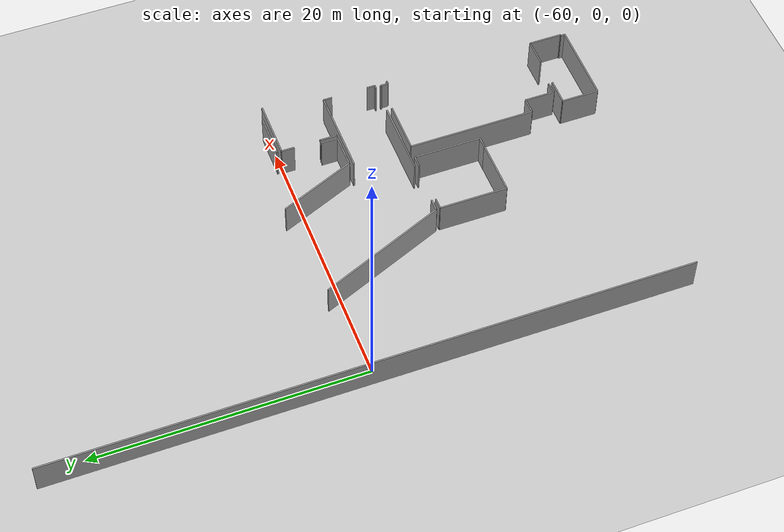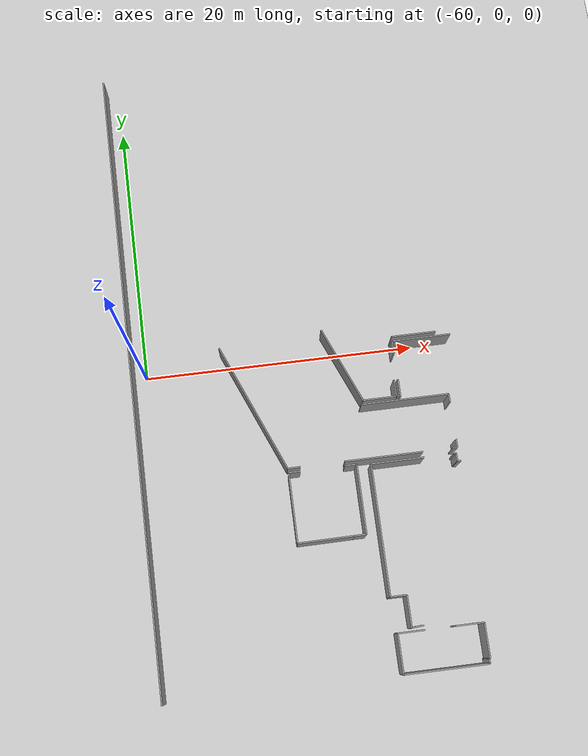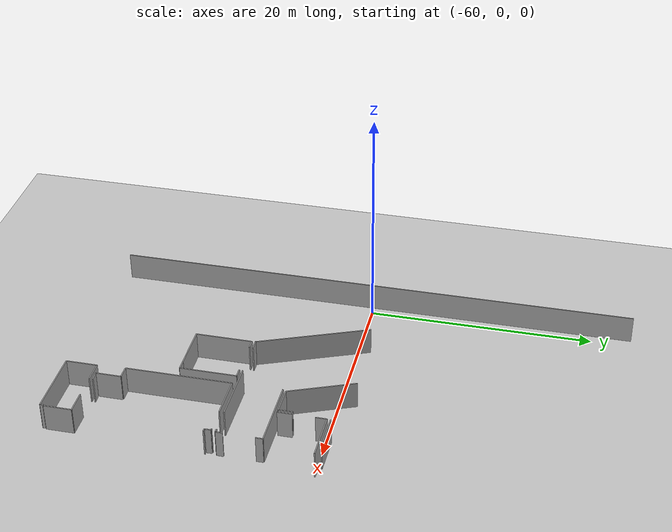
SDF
<sdf version="1.6">
 <world name="default">
  <model name="ground_plane">
   <static>1</static>
   <link name="link">
    <collision name="collision">
     <geometry><plane><normal>0 0 1</normal><size>100 100</size></plane></geometry>
     <surface><friction><ode><mu>100</mu><mu2>50</mu2></ode></friction></surface>
    </collision>
    <visual name="visual">
     <cast_shadows>0</cast_shadows>
     <geometry><plane><normal>0 0 1</normal><size>100 100</size></plane></geometry>
     <material>
      <script><uri>file://media/materials/scripts/gazebo.material</uri><name>Gazebo/Grey</name></script>
     </material>
    </visual>
   </link>
  </model>
  <model name="0510032194_A_40_1_202">
   <static>1</static>
   <link name="Wall_15">
    <collision name="Wall_15_Collision">
     <geometry><box><size>10.2029893452 0.1 2.5</size></box></geometry>
     <pose>5.10149467261 0 1.25 0 0 0</pose>
    </collision>
    <visual name="Wall_15_Visual">
     <pose>5.10149467261 0 1.25 0 0 0</pose>
     <geometry><box><size>10.2029893452 0.1 2.5</size></box></geometry>
     <material>
      <script><uri>file://media/materials/scripts/gazebo.material</uri><name>Gazebo/Grey</name></script>
      <ambient>1 1 1 1</ambient>
     </material>
    </visual>
    <pose>10.4824686748 -31.8431865668 0 0 0 1.96091719208</pose>
   </link>
   <link name="Wall_24">
    <collision name="Wall_24_Collision">
     <geometry><box><size>1.24653088701 0.1 2.5</size></box></geometry>
     <pose>0.623265443507 0 1.25 0 0 0</pose>
    </collision>
    <visual name="Wall_24_Visual">
     <pose>0.623265443507 0 1.25 0 0 0</pose>
     <geometry><box><size>1.24653088701 0.1 2.5</size></box></geometry>
     <material>
      <script><uri>file://media/materials/scripts/gazebo.material</uri><name>Gazebo/Grey</name></script>
      <ambient>1 1 1 1</ambient>
     </material>
    </visual>
    <pose>18.9773975778 -26.3300753837 0 0 0 -1.57079632679</pose>
   </link>
   <link name="Wall_25">
    <collision name="Wall_25_Collision">
     <geometry><box><size>2.44847930599 0.1 2.5</size></box></geometry>
     <pose>1.22423965299 0 1.25 0 0 0</pose>
    </collision>
    <visual name="Wall_25_Visual">
     <pose>1.22423965299 0 1.25 0 0 0</pose>
     <geometry><box><size>2.44847930599 0.1 2.5</size></box></geometry>
     <material>
      <script><uri>file://media/materials/scripts/gazebo.material</uri><name>Gazebo/Grey</name></script>
      <ambient>1 1 1 1</ambient>
     </material>
    </visual>
    <pose>18.9773975778 -27.5766062708 0 0 0 3.14159265359</pose>
   </link>
   <link name="Wall_26">
    <collision name="Wall_26_Collision">
     <geometry><box><size>6.07160161636 0.1 2.5</size></box></geometry>
     <pose>3.03580080818 0 1.25 0 0 0</pose>
    </collision>
    <visual name="Wall_26_Visual">
     <pose>3.03580080818 0 1.25 0 0 0</pose>
     <geometry><box><size>6.07160161636 0.1 2.5</size></box></geometry>
     <material>
      <script><uri>file://media/materials/scripts/gazebo.material</uri><name>Gazebo/Grey</name></script>
      <ambient>1 1 1 1</ambient>
     </material>
    </visual>
    <pose>16.5289182718 -27.5766062708 0 0 0 1.96460422435</pose>
   </link>
   <link name="Wall_29">
    <collision name="Wall_29_Collision">
     <geometry><box><size>6.40603069967 0.1 2.5</size></box></geometry>
     <pose>3.20301534983 0 1.25 0 0 0</pose>
    </collision>
    <visual name="Wall_29_Visual">
     <pose>3.20301534983 0 1.25 0 0 0</pose>
     <geometry><box><size>6.40603069967 0.1 2.5</size></box></geometry>
     <material>
      <script><uri>file://media/materials/scripts/gazebo.material</uri><name>Gazebo/Grey</name></script>
      <ambient>1 1 1 1</ambient>
     </material>
    </visual>
    <pose>16.341443278 -27.8672179143 0 0 0 0.0</pose>
   </link>
   <link name="Wall_30">
    <collision name="Wall_30_Collision">
     <geometry><box><size>0.631013393793 0.1 2.5</size></box></geometry>
     <pose>0.315506696896 0 1.25 0 0 0</pose>
    </collision>
    <visual name="Wall_30_Visual">
     <pose>0.315506696896 0 1.25 0 0 0</pose>
     <geometry><box><size>0.631013393793 0.1 2.5</size></box></geometry>
     <material>
      <script><uri>file://media/materials/scripts/gazebo.material</uri><name>Gazebo/Grey</name></script>
      <ambient>1 1 1 1</ambient>
     </material>
    </visual>
    <pose>22.7474739777 -27.8672179143 0 0 0 -1.57079632679</pose>
   </link>
   <link name="Wall_31">
    <collision name="Wall_31_Collision">
     <geometry><box><size>0.609674776611 0.1 2.5</size></box></geometry>
     <pose>0.304837388306 0 1.25 0 0 0</pose>
    </collision>
    <visual name="Wall_31_Visual">
     <pose>0.304837388306 0 1.25 0 0 0</pose>
     <geometry><box><size>0.609674776611 0.1 2.5</size></box></geometry>
     <material>
      <script><uri>file://media/materials/scripts/gazebo.material</uri><name>Gazebo/Grey</name></script>
      <ambient>1 1 1 1</ambient>
     </material>
    </visual>
    <pose>22.7474739777 -31.2261448867 0 0 0 -1.57079632679</pose>
   </link>
   <link name="Wall_32">
    <collision name="Wall_32_Collision">
     <geometry><box><size>0.315887743632 0.1 2.5</size></box></geometry>
     <pose>0.157943871816 0 1.25 0 0 0</pose>
    </collision>
    <visual name="Wall_32_Visual">
     <pose>0.157943871816 0 1.25 0 0 0</pose>
     <geometry><box><size>0.315887743632 0.1 2.5</size></box></geometry>
     <material>
      <script><uri>file://media/materials/scripts/gazebo.material</uri><name>Gazebo/Grey</name></script>
      <ambient>1 1 1 1</ambient>
     </material>
    </visual>
    <pose>22.7474739777 -31.8358196633 0 0 0 3.14159265359</pose>
   </link>
   <link name="Wall_33">
    <collision name="Wall_33_Collision">
     <geometry><box><size>5.65270130381 0.1 2.5</size></box></geometry>
     <pose>2.82635065191 0 1.25 0 0 0</pose>
    </collision>
    <visual name="Wall_33_Visual">
     <pose>2.82635065191 0 1.25 0 0 0</pose>
     <geometry><box><size>5.65270130381 0.1 2.5</size></box></geometry>
     <material>
      <script><uri>file://media/materials/scripts/gazebo.material</uri><name>Gazebo/Grey</name></script>
      <ambient>1 1 1 1</ambient>
     </material>
    </visual>
    <pose>20.2498396428 -31.8358196633 0 0 0 3.14159265359</pose>
   </link>
   <link name="Wall_34">
    <collision name="Wall_34_Collision">
     <geometry><box><size>0.899935526764 0.1 2.5</size></box></geometry>
     <pose>0.449967763382 0 1.25 0 0 0</pose>
    </collision>
    <visual name="Wall_34_Visual">
     <pose>0.449967763382 0 1.25 0 0 0</pose>
     <geometry><box><size>0.899935526764 0.1 2.5</size></box></geometry>
     <material>
      <script><uri>file://media/materials/scripts/gazebo.material</uri><name>Gazebo/Grey</name></script>
      <ambient>1 1 1 1</ambient>
     </material>
    </visual>
    <pose>11.3823740482 -31.8358196633 0 0 0 -3.13340652735</pose>
   </link>
   <link name="Wall_44">
    <collision name="Wall_44_Collision">
     <geometry><box><size>3.26976488816 0.1 2.5</size></box></geometry>
     <pose>1.63488244408 0 1.25 0 0 0</pose>
    </collision>
    <visual name="Wall_44_Visual">
     <pose>1.63488244408 0 1.25 0 0 0</pose>
     <geometry><box><size>3.26976488816 0.1 2.5</size></box></geometry>
     <material>
      <script><uri>file://media/materials/scripts/gazebo.material</uri><name>Gazebo/Grey</name></script>
      <ambient>1 1 1 1</ambient>
     </material>
    </visual>
    <pose>22.5335797436 -23.1001962391 0 0 0 3.14027190697</pose>
   </link>
   <link name="Wall_45">
    <collision name="Wall_45_Collision">
     <geometry><box><size>1.28285734245 0.1 2.5</size></box></geometry>
     <pose>0.641428671227 0 1.25 0 0 0</pose>
    </collision>
    <visual name="Wall_45_Visual">
     <pose>0.641428671227 0 1.25 0 0 0</pose>
     <geometry><box><size>1.28285734245 0.1 2.5</size></box></geometry>
     <material>
      <script><uri>file://media/materials/scripts/gazebo.material</uri><name>Gazebo/Grey</name></script>
      <ambient>1 1 1 1</ambient>
     </material>
    </visual>
    <pose>19.2561967725 -27.6220778478 0 0 0 1.57079632679</pose>
   </link>
   <link name="Wall_46">
    <collision name="Wall_46_Collision">
     <geometry><box><size>0.965953474194 0.1 2.5</size></box></geometry>
     <pose>0.482976737097 0 1.25 0 0 0</pose>
    </collision>
    <visual name="Wall_46_Visual">
     <pose>0.482976737097 0 1.25 0 0 0</pose>
     <geometry><box><size>0.965953474194 0.1 2.5</size></box></geometry>
     <material>
      <script><uri>file://media/materials/scripts/gazebo.material</uri><name>Gazebo/Grey</name></script>
      <ambient>1 1 1 1</ambient>
     </material>
    </visual>
    <pose>19.2561967725 -24.3885152514 0 0 0 1.57079632679</pose>
   </link>
   <link name="Wall_47">
    <collision name="Wall_47_Collision">
     <geometry><box><size>4.31294098221 0.1 2.5</size></box></geometry>
     <pose>2.15647049111 0 1.25 0 0 0</pose>
    </collision>
    <visual name="Wall_47_Visual">
     <pose>2.15647049111 0 1.25 0 0 0</pose>
     <geometry><box><size>4.31294098221 0.1 2.5</size></box></geometry>
     <material>
      <script><uri>file://media/materials/scripts/gazebo.material</uri><name>Gazebo/Grey</name></script>
      <ambient>1 1 1 1</ambient>
     </material>
    </visual>
    <pose>19.2561967725 -23.4225617772 0 0 0 0.0</pose>
   </link>
   <link name="Wall_50">
    <collision name="Wall_50_Collision">
     <geometry><box><size>5.04404265183 0.1 2.5</size></box></geometry>
     <pose>2.52202132592 0 1.25 0 0 0</pose>
    </collision>
    <visual name="Wall_50_Visual">
     <pose>2.52202132592 0 1.25 0 0 0</pose>
     <geometry><box><size>5.04404265183 0.1 2.5</size></box></geometry>
     <material>
      <script><uri>file://media/materials/scripts/gazebo.material</uri><name>Gazebo/Grey</name></script>
      <ambient>1 1 1 1</ambient>
     </material>
    </visual>
    <pose>10.5168898965 -37.1888912175 0 0 0 1.57079632679</pose>
   </link>
   <link name="Wall_51">
    <collision name="Wall_51_Collision">
     <geometry><box><size>0.834111303751 0.1 2.5</size></box></geometry>
     <pose>0.417055651876 0 1.25 0 0 0</pose>
    </collision>
    <visual name="Wall_51_Visual">
     <pose>0.417055651876 0 1.25 0 0 0</pose>
     <geometry><box><size>0.834111303751 0.1 2.5</size></box></geometry>
     <material>
      <script><uri>file://media/materials/scripts/gazebo.material</uri><name>Gazebo/Grey</name></script>
      <ambient>1 1 1 1</ambient>
     </material>
    </visual>
    <pose>10.5168898965 -32.1448485657 0 0 0 0.0</pose>
   </link>
   <link name="Wall_52">
    <collision name="Wall_52_Collision">
     <geometry><box><size>0.861546668699 0.1 2.5</size></box></geometry>
     <pose>0.430773334349 0 1.25 0 0 0</pose>
    </collision>
    <visual name="Wall_52_Visual">
     <pose>0.430773334349 0 1.25 0 0 0</pose>
     <geometry><box><size>0.861546668699 0.1 2.5</size></box></geometry>
     <material>
      <script><uri>file://media/materials/scripts/gazebo.material</uri><name>Gazebo/Grey</name></script>
      <ambient>1 1 1 1</ambient>
     </material>
    </visual>
    <pose>14.5521748242 -32.1448485657 0 0 0 0.0</pose>
   </link>
   <link name="Wall_53">
    <collision name="Wall_53_Collision">
     <geometry><box><size>5.01254278837 0.1 2.5</size></box></geometry>
     <pose>2.50627139419 0 1.25 0 0 0</pose>
    </collision>
    <visual name="Wall_53_Visual">
     <pose>2.50627139419 0 1.25 0 0 0</pose>
     <geometry><box><size>5.01254278837 0.1 2.5</size></box></geometry>
     <material>
      <script><uri>file://media/materials/scripts/gazebo.material</uri><name>Gazebo/Grey</name></script>
      <ambient>1 1 1 1</ambient>
     </material>
    </visual>
    <pose>15.4137214929 -32.1448485657 0 0 0 -1.57079632679</pose>
   </link>
   <link name="Wall_54">
    <collision name="Wall_54_Collision">
     <geometry><box><size>0.854306780727 0.1 2.5</size></box></geometry>
     <pose>0.427153390363 0 1.25 0 0 0</pose>
    </collision>
    <visual name="Wall_54_Visual">
     <pose>0.427153390363 0 1.25 0 0 0</pose>
     <geometry><box><size>0.854306780727 0.1 2.5</size></box></geometry>
     <material>
      <script><uri>file://media/materials/scripts/gazebo.material</uri><name>Gazebo/Grey</name></script>
      <ambient>1 1 1 1</ambient>
     </material>
    </visual>
    <pose>15.4137214929 -37.157391354 0 0 0 3.14159265359</pose>
   </link>
   <link name="Wall_55">
    <collision name="Wall_55_Collision">
     <geometry><box><size>4.04264753926 0.1 2.5</size></box></geometry>
     <pose>2.02132376963 0 1.25 0 0 0</pose>
    </collision>
    <visual name="Wall_55_Visual">
     <pose>2.02132376963 0 1.25 0 0 0</pose>
     <geometry><box><size>4.04264753926 0.1 2.5</size></box></geometry>
     <material>
      <script><uri>file://media/materials/scripts/gazebo.material</uri><name>Gazebo/Grey</name></script>
      <ambient>1 1 1 1</ambient>
     </material>
    </visual>
    <pose>14.5594147122 -37.157391354 0 0 0 -3.13380068511</pose>
   </link>
   <link name="Wall_56">
    <collision name="Wall_56_Collision">
     <geometry><box><size>2.24944589454 0.1 2.5</size></box></geometry>
     <pose>1.12472294727 0 1.25 0 0 0</pose>
    </collision>
    <visual name="Wall_56_Visual">
     <pose>1.12472294727 0 1.25 0 0 0</pose>
     <geometry><box><size>2.24944589454 0.1 2.5</size></box></geometry>
     <material>
      <script><uri>file://media/materials/scripts/gazebo.material</uri><name>Gazebo/Grey</name></script>
      <ambient>1 1 1 1</ambient>
     </material>
    </visual>
    <pose>17.6011837852 -43.8934085266 0 0 0 1.57079632679</pose>
   </link>
   <link name="Wall_57">
    <collision name="Wall_57_Collision">
     <geometry><box><size>1.16854332184 0.1 2.5</size></box></geometry>
     <pose>0.584271660919 0 1.25 0 0 0</pose>
    </collision>
    <visual name="Wall_57_Visual">
     <pose>0.584271660919 0 1.25 0 0 0</pose>
     <geometry><box><size>1.16854332184 0.1 2.5</size></box></geometry>
     <material>
      <script><uri>file://media/materials/scripts/gazebo.material</uri><name>Gazebo/Grey</name></script>
      <ambient>1 1 1 1</ambient>
     </material>
    </visual>
    <pose>17.6011837852 -41.643962632 0 0 0 3.14159265359</pose>
   </link>
   <link name="Wall_58">
    <collision name="Wall_58_Collision">
     <geometry><box><size>9.39762861915 0.1 2.5</size></box></geometry>
     <pose>4.69881430958 0 1.25 0 0 0</pose>
    </collision>
    <visual name="Wall_58_Visual">
     <pose>4.69881430958 0 1.25 0 0 0</pose>
     <geometry><box><size>9.39762861915 0.1 2.5</size></box></geometry>
     <material>
      <script><uri>file://media/materials/scripts/gazebo.material</uri><name>Gazebo/Grey</name></script>
      <ambient>1 1 1 1</ambient>
     </material>
    </visual>
    <pose>16.4326404634 -41.643962632 0 0 0 1.57079632679</pose>
   </link>
   <link name="Wall_59">
    <collision name="Wall_59_Collision">
     <geometry><box><size>3.83650554741 0.1 2.5</size></box></geometry>
     <pose>1.9182527737 0 1.25 0 0 0</pose>
    </collision>
    <visual name="Wall_59_Visual">
     <pose>1.9182527737 0 1.25 0 0 0</pose>
     <geometry><box><size>3.83650554741 0.1 2.5</size></box></geometry>
     <material>
      <script><uri>file://media/materials/scripts/gazebo.material</uri><name>Gazebo/Grey</name></script>
      <ambient>1 1 1 1</ambient>
     </material>
    </visual>
    <pose>16.4326404634 -32.2463340129 0 0 0 0.0</pose>
   </link>
   <link name="Wall_60">
    <collision name="Wall_60_Collision">
     <geometry><box><size>0.153561834359 0.1 2.5</size></box></geometry>
     <pose>0.0767809171795 0 1.25 0 0 0</pose>
    </collision>
    <visual name="Wall_60_Visual">
     <pose>0.0767809171795 0 1.25 0 0 0</pose>
     <geometry><box><size>0.153561834359 0.1 2.5</size></box></geometry>
     <material>
      <script><uri>file://media/materials/scripts/gazebo.material</uri><name>Gazebo/Grey</name></script>
      <ambient>1 1 1 1</ambient>
     </material>
    </visual>
    <pose>22.4397152311 -32.2463340129 0 0 0 0.0</pose>
   </link>
   <link name="Wall_61">
    <collision name="Wall_61_Collision">
     <geometry><box><size>0.566616495513 0.1 2.5</size></box></geometry>
     <pose>0.283308247757 0 1.25 0 0 0</pose>
    </collision>
    <visual name="Wall_61_Visual">
     <pose>0.283308247757 0 1.25 0 0 0</pose>
     <geometry><box><size>0.566616495513 0.1 2.5</size></box></geometry>
     <material>
      <script><uri>file://media/materials/scripts/gazebo.material</uri><name>Gazebo/Grey</name></script>
      <ambient>1 1 1 1</ambient>
     </material>
    </visual>
    <pose>22.5932770654 -32.2463340129 0 0 0 -1.57079632679</pose>
   </link>
   <link name="Wall_62">
    <collision name="Wall_62_Collision">
     <geometry><box><size>0.259365811217 0.1 2.5</size></box></geometry>
     <pose>0.129682905608 0 1.25 0 0 0</pose>
    </collision>
    <visual name="Wall_62_Visual">
     <pose>0.129682905608 0 1.25 0 0 0</pose>
     <geometry><box><size>0.259365811217 0.1 2.5</size></box></geometry>
     <material>
      <script><uri>file://media/materials/scripts/gazebo.material</uri><name>Gazebo/Grey</name></script>
      <ambient>1 1 1 1</ambient>
     </material>
    </visual>
    <pose>22.5932770654 -32.8129505084 0 0 0 0.0</pose>
   </link>
   <link name="Wall_65">
    <collision name="Wall_65_Collision">
     <geometry><box><size>0.859122894422 0.1 2.5</size></box></geometry>
     <pose>0.429561447211 0 1.25 0 0 0</pose>
    </collision>
    <visual name="Wall_65_Visual">
     <pose>0.429561447211 0 1.25 0 0 0</pose>
     <geometry><box><size>0.859122894422 0.1 2.5</size></box></geometry>
     <material>
      <script><uri>file://media/materials/scripts/gazebo.material</uri><name>Gazebo/Grey</name></script>
      <ambient>1 1 1 1</ambient>
     </material>
    </visual>
    <pose>18.4580308775 -43.830916862 0 0 0 -3.06878944542</pose>
   </link>
   <link name="Wall_66">
    <collision name="Wall_66_Collision">
     <geometry><box><size>2.76868557929 0.1 2.5</size></box></geometry>
     <pose>1.38434278964 0 1.25 0 0 0</pose>
    </collision>
    <visual name="Wall_66_Visual">
     <pose>1.38434278964 0 1.25 0 0 0</pose>
     <geometry><box><size>2.76868557929 0.1 2.5</size></box></geometry>
     <material>
      <script><uri>file://media/materials/scripts/gazebo.material</uri><name>Gazebo/Grey</name></script>
      <ambient>1 1 1 1</ambient>
     </material>
    </visual>
    <pose>16.5789624097 -46.9102825462 0 0 0 1.57079632679</pose>
   </link>
   <link name="Wall_67">
    <collision name="Wall_67_Collision">
     <geometry><box><size>1.90777398848 0.1 2.5</size></box></geometry>
     <pose>0.95388699424 0 1.25 0 0 0</pose>
    </collision>
    <visual name="Wall_67_Visual">
     <pose>0.95388699424 0 1.25 0 0 0</pose>
     <geometry><box><size>1.90777398848 0.1 2.5</size></box></geometry>
     <material>
      <script><uri>file://media/materials/scripts/gazebo.material</uri><name>Gazebo/Grey</name></script>
      <ambient>1 1 1 1</ambient>
     </material>
    </visual>
    <pose>16.5789624097 -44.1415969669 0 0 0 0.0</pose>
   </link>
   <link name="Wall_68">
    <collision name="Wall_68_Collision">
     <geometry><box><size>2.02208800909 0.1 2.5</size></box></geometry>
     <pose>1.01104400455 0 1.25 0 0 0</pose>
    </collision>
    <visual name="Wall_68_Visual">
     <pose>1.01104400455 0 1.25 0 0 0</pose>
     <geometry><box><size>2.02208800909 0.1 2.5</size></box></geometry>
     <material>
      <script><uri>file://media/materials/scripts/gazebo.material</uri><name>Gazebo/Grey</name></script>
      <ambient>1 1 1 1</ambient>
     </material>
    </visual>
    <pose>20.6000215926 -44.1415969669 0 0 0 0.0</pose>
   </link>
   <link name="Wall_69">
    <collision name="Wall_69_Collision">
     <geometry><box><size>2.45660830301 0.1 2.5</size></box></geometry>
     <pose>1.2283041515 0 1.25 0 0 0</pose>
    </collision>
    <visual name="Wall_69_Visual">
     <pose>1.2283041515 0 1.25 0 0 0</pose>
     <geometry><box><size>2.45660830301 0.1 2.5</size></box></geometry>
     <material>
      <script><uri>file://media/materials/scripts/gazebo.material</uri><name>Gazebo/Grey</name></script>
      <ambient>1 1 1 1</ambient>
     </material>
    </visual>
    <pose>22.6221096017 -44.1415969669 0 0 0 -1.57079632679</pose>
   </link>
   <link name="Wall_70">
    <collision name="Wall_70_Collision">
     <geometry><box><size>0.0762093470764 0.1 2.5</size></box></geometry>
     <pose>0.0381046735382 0 1.25 0 0 0</pose>
    </collision>
    <visual name="Wall_70_Visual">
     <pose>0.0381046735382 0 1.25 0 0 0</pose>
     <geometry><box><size>0.0762093470764 0.1 2.5</size></box></geometry>
     <material>
      <script><uri>file://media/materials/scripts/gazebo.material</uri><name>Gazebo/Grey</name></script>
      <ambient>1 1 1 1</ambient>
     </material>
    </visual>
    <pose>22.6221096017 -46.5982052699 0 0 0 3.14159265359</pose>
   </link>
   <link name="Wall_71">
    <collision name="Wall_71_Collision">
     <geometry><box><size>0.317538946152 0.1 2.5</size></box></geometry>
     <pose>0.158769473076 0 1.25 0 0 0</pose>
    </collision>
    <visual name="Wall_71_Visual">
     <pose>0.158769473076 0 1.25 0 0 0</pose>
     <geometry><box><size>0.317538946152 0.1 2.5</size></box></geometry>
     <material>
      <script><uri>file://media/materials/scripts/gazebo.material</uri><name>Gazebo/Grey</name></script>
      <ambient>1 1 1 1</ambient>
     </material>
    </visual>
    <pose>22.5459002547 -46.5982052699 0 0 0 -1.57079632679</pose>
   </link>
   <link name="Wall_72">
    <collision name="Wall_72_Collision">
     <geometry><box><size>5.96694034452 0.1 2.5</size></box></geometry>
     <pose>2.98347017226 0 1.25 0 0 0</pose>
    </collision>
    <visual name="Wall_72_Visual">
     <pose>2.98347017226 0 1.25 0 0 0</pose>
     <geometry><box><size>5.96694034452 0.1 2.5</size></box></geometry>
     <material>
      <script><uri>file://media/materials/scripts/gazebo.material</uri><name>Gazebo/Grey</name></script>
      <ambient>1 1 1 1</ambient>
     </material>
    </visual>
    <pose>22.5459002547 -46.915744216 0 0 0 3.14067733178</pose>
   </link>
   <link name="Wall_436">
    <collision name="Wall_436_Collision">
     <geometry><box><size>46.915744216 0.1 2.5</size></box></geometry>
     <pose>23.457872108 0 1.25 0 0 0</pose>
    </collision>
    <visual name="Wall_436_Visual">
     <pose>23.457872108 0 1.25 0 0 0</pose>
     <geometry><box><size>46.915744216 0.1 2.5</size></box></geometry>
     <material>
      <script><uri>file://media/materials/scripts/gazebo.material</uri><name>Gazebo/Grey</name></script>
      <ambient>1 1 1 1</ambient>
     </material>
    </visual>
    <pose>0.0 -46.915744216 0 0 0 1.57079632679</pose>
   </link>
   <pose>-60.9 23.465744216 0 0 0 0</pose>
  </model>
 </world>
</sdf>
